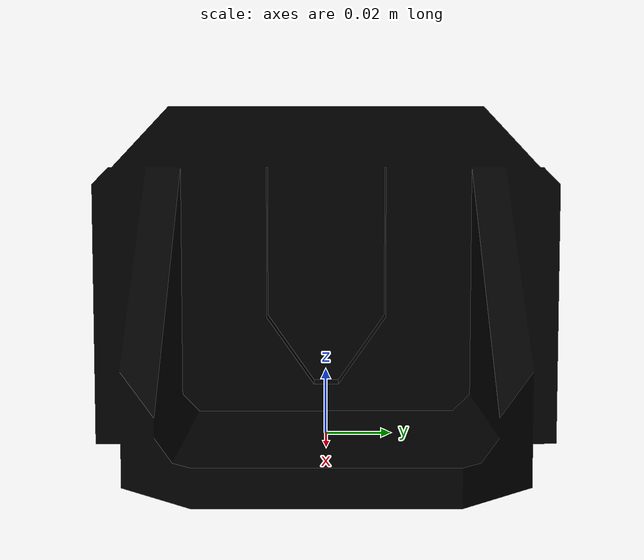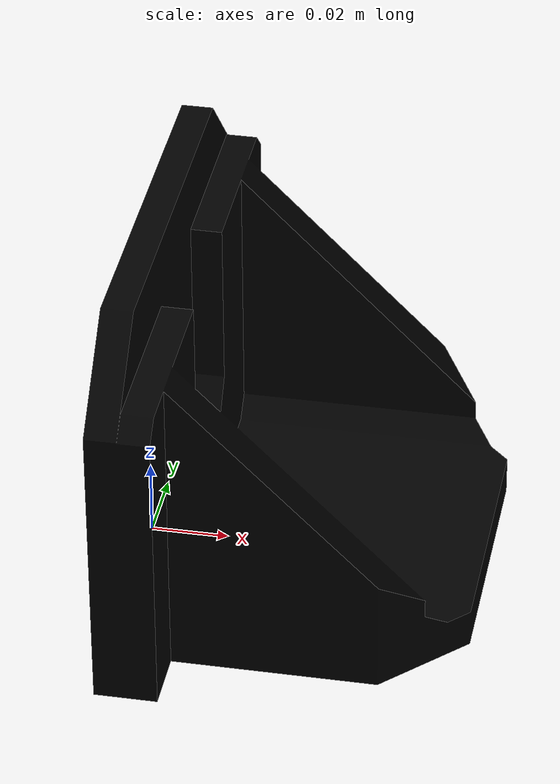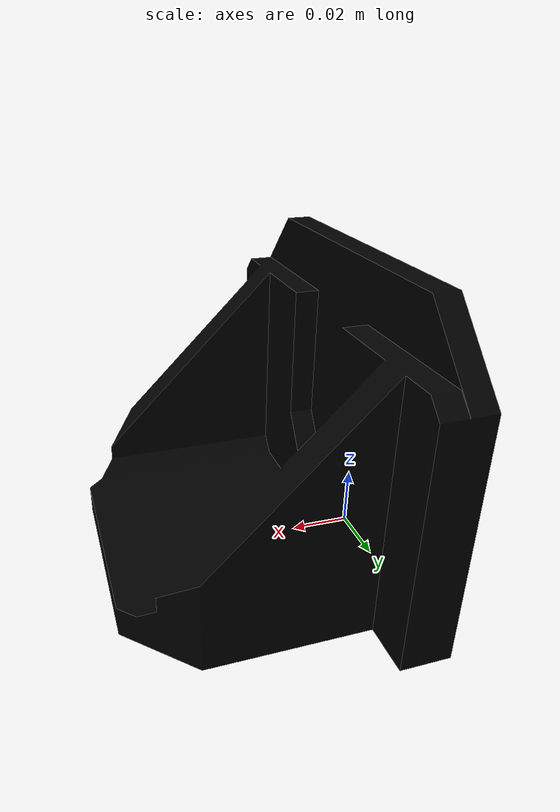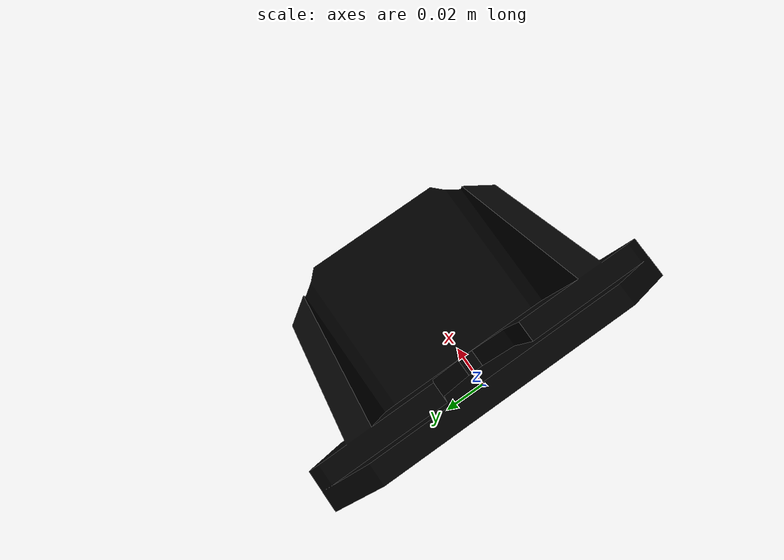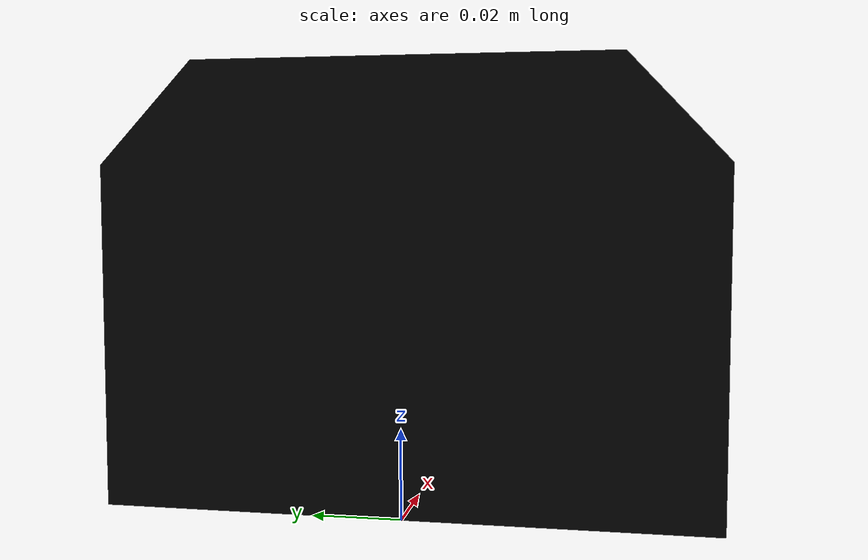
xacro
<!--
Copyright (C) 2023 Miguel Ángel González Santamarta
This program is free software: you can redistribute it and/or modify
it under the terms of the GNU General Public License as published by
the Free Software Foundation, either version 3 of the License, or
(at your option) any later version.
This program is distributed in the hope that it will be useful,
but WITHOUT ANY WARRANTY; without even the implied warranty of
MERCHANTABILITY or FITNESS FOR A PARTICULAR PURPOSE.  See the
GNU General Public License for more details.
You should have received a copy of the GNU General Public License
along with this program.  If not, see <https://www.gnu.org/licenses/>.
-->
<?xml version="1.0"?>

<robot name="torso_arm" xmlns:xacro="http://www.ros.org/wiki/xacro">

<link name="torso_arm_link">
    <inertial>
      <mass value="0.01" />
      <origin xyz="0 0 0" />
      <inertia  ixx="0.001" ixy="0.0"  ixz="0.0"  iyy="0.001"  iyz="0.0"  izz="0.001" />
    </inertial>
    <visual>
       <origin xyz="0 0 0" rpy="0 0 0" />
       <geometry>
         <mesh filename="package://rb1_description/meshes/torsos/torso_base_arm.dae"/>
       </geometry>
       <material name="black">
         <color rgba="0.0 0.0 0.0 1"/>
       </material>
    </visual>
    <collision>
       <origin xyz="0 0 0" rpy="0 0 0 " />
       <geometry>
         <mesh filename="package://rb1_description/meshes/torsos/torso_base_arm.dae"/>
       </geometry>
    </collision>
  </link>

</robot>
